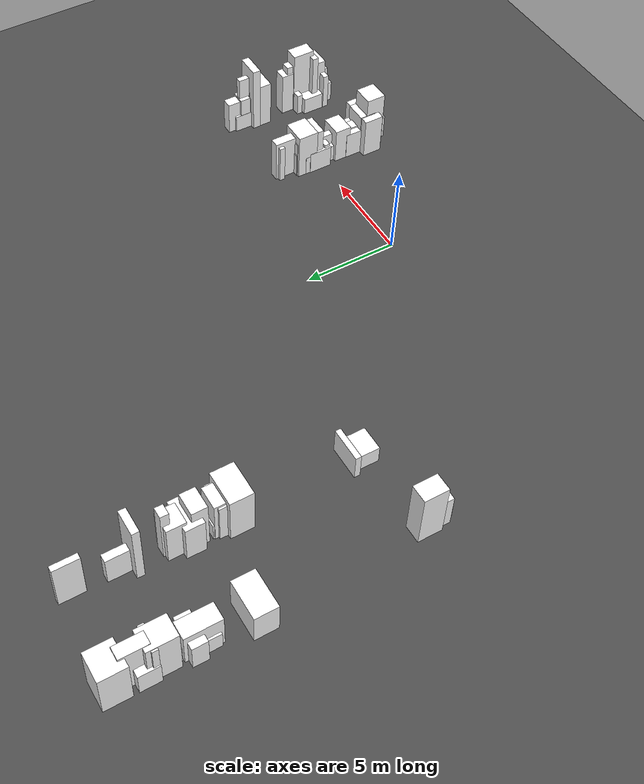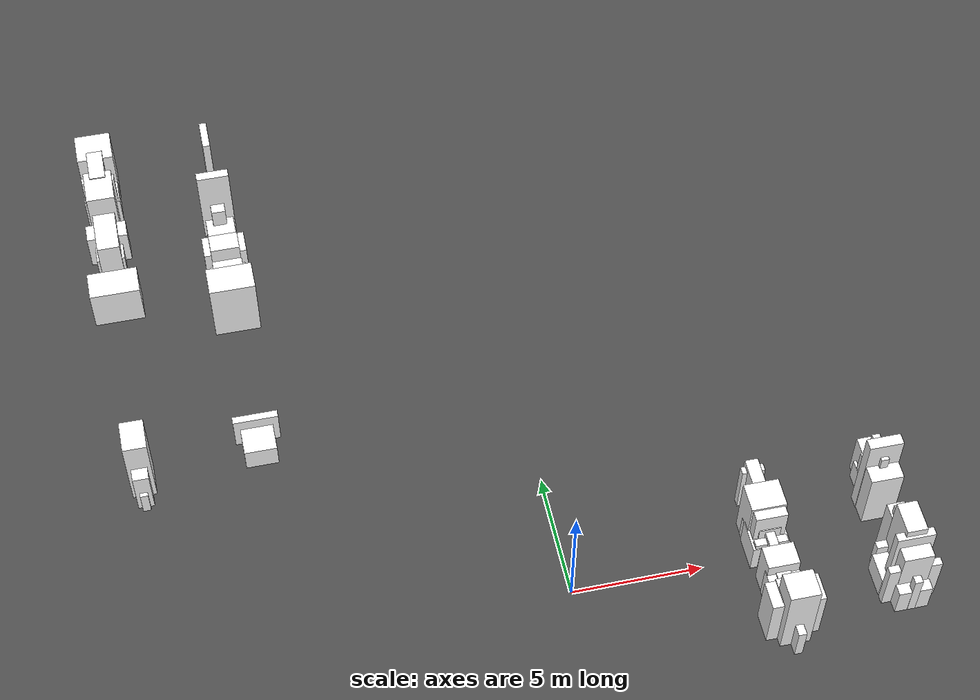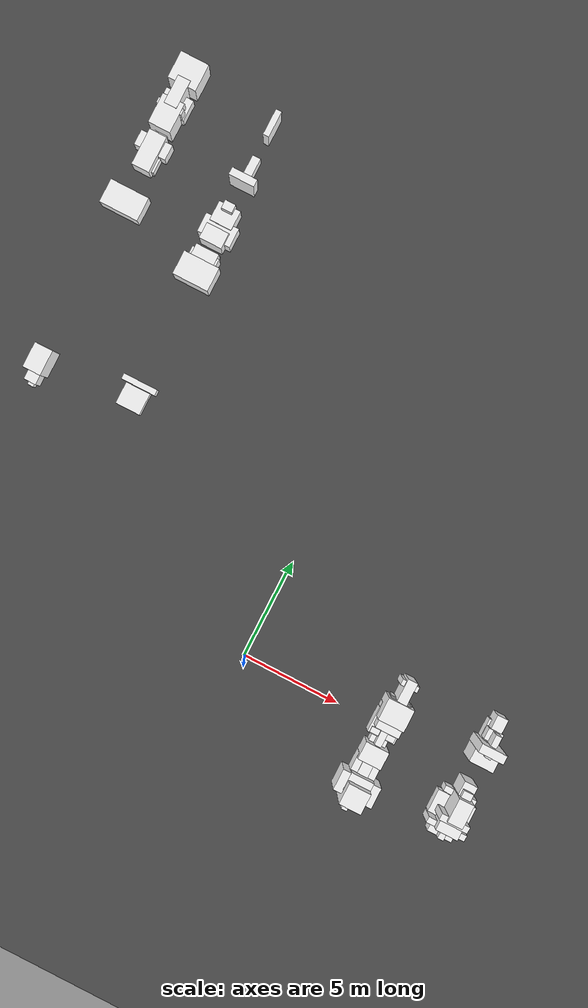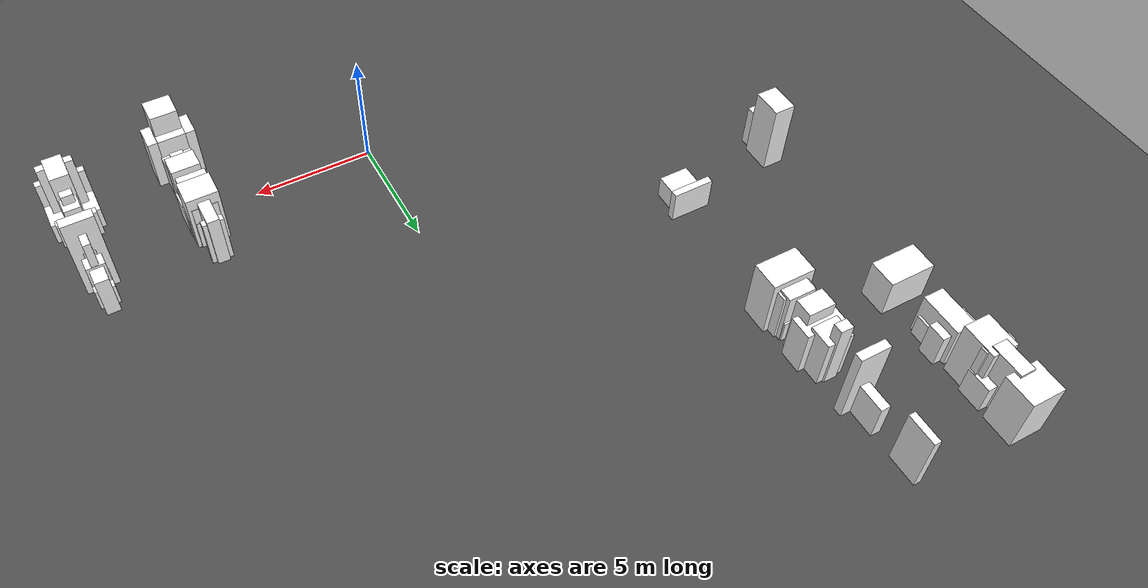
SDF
<sdf version="1.6">
 <world name="mirror_edge_world">
  <model name="ground_plane">
   <static>true</static>
   <link name="link">
    <collision name="collision">
     <geometry><plane><normal>0 0 1</normal><size>100 100</size></plane></geometry>
    </collision>
    <visual name="visual">
     <geometry><plane><normal>0 0 1</normal><size>100 100</size></plane></geometry>
     <material>
      <ambient>0.3 0.3 0.3 1</ambient>
      <diffuse>0.3 0.3 0.3 1</diffuse>
      <specular>0.5 0.5 0.5 1</specular>
      <emissive>0 0 0 1</emissive>
     </material>
    </visual>
   </link>
  </model>
  <model name="roadside_block_5_24_0">
   <static>true</static>
   <link name="link">
    <pose>7.462890913326366 -3.343544250186103 0.7053059971121474 0 0 0</pose>
    <collision name="collision">
     <geometry><box><size>0.3 1.6919641136228656 1.4106119942242947</size></box></geometry>
    </collision>
    <visual name="visual">
     <geometry><box><size>0.3 1.6919641136228656 1.4106119942242947</size></box></geometry>
     <material>
      <ambient>1 1 1 1</ambient>
      <diffuse>1 1 1 1</diffuse>
      <specular>0.9 0.9 0.9 1</specular>
      <emissive>0.05 0.05 0.05 1</emissive>
     </material>
    </visual>
   </link>
  </model>
  <model name="roadside_block_5_25_0">
   <static>true</static>
   <link name="link">
    <pose>7.462890913326366 -3.2311919272771905 1.6919149049817446 0 0 0</pose>
    <collision name="collision">
     <geometry><box><size>1.1378854857000824 1.0619434902325613 3.383829809963489</size></box></geometry>
    </collision>
    <visual name="visual">
     <geometry><box><size>1.1378854857000824 1.0619434902325613 3.383829809963489</size></box></geometry>
     <material>
      <ambient>1 1 1 1</ambient>
      <diffuse>1 1 1 1</diffuse>
      <specular>0.9 0.9 0.9 1</specular>
      <emissive>0.05 0.05 0.05 1</emissive>
     </material>
    </visual>
   </link>
  </model>
  <model name="roadside_block_5_26_0">
   <static>true</static>
   <link name="link">
    <pose>12.062890913326367 -3.118839604368278 0.9534237336242563 0 0 0</pose>
    <collision name="collision">
     <geometry><box><size>0.3 0.30421665590178204 1.9068474672485125</size></box></geometry>
    </collision>
    <visual name="visual">
     <geometry><box><size>0.3 0.30421665590178204 1.9068474672485125</size></box></geometry>
     <material>
      <ambient>1 1 1 1</ambient>
      <diffuse>1 1 1 1</diffuse>
      <specular>0.9 0.9 0.9 1</specular>
      <emissive>0.05 0.05 0.05 1</emissive>
     </material>
    </visual>
   </link>
  </model>
  <model name="roadside_block_5_27_0">
   <static>true</static>
   <link name="link">
    <pose>12.062890913326367 -3.006487281459366 0.6172162483355812 0 0 0</pose>
    <collision name="collision">
     <geometry><box><size>1.2660789604378446 0.5171762105283415 1.2344324966711624</size></box></geometry>
    </collision>
    <visual name="visual">
     <geometry><box><size>1.2660789604378446 0.5171762105283415 1.2344324966711624</size></box></geometry>
     <material>
      <ambient>1 1 1 1</ambient>
      <diffuse>1 1 1 1</diffuse>
      <specular>0.9 0.9 0.9 1</specular>
      <emissive>0.05 0.05 0.05 1</emissive>
     </material>
    </visual>
   </link>
  </model>
  <model name="roadside_block_5_28_0">
   <static>true</static>
   <link name="link">
    <pose>7.462890913326366 -2.8941349585504534 1.184255943134263 0 0 0</pose>
    <collision name="collision">
     <geometry><box><size>2.0 1.0692905444001255 2.368511886268526</size></box></geometry>
    </collision>
    <visual name="visual">
     <geometry><box><size>2.0 1.0692905444001255 2.368511886268526</size></box></geometry>
     <material>
      <ambient>1 1 1 1</ambient>
      <diffuse>1 1 1 1</diffuse>
      <specular>0.9 0.9 0.9 1</specular>
      <emissive>0.05 0.05 0.05 1</emissive>
     </material>
    </visual>
   </link>
  </model>
  <model name="roadside_block_5_29_0">
   <static>true</static>
   <link name="link">
    <pose>7.462890913326366 -2.781782635641541 1.204679029686971 0 0 0</pose>
    <collision name="collision">
     <geometry><box><size>1.1732764641987752 0.9343657603073516 2.409358059373942</size></box></geometry>
    </collision>
    <visual name="visual">
     <geometry><box><size>1.1732764641987752 0.9343657603073516 2.409358059373942</size></box></geometry>
     <material>
      <ambient>1 1 1 1</ambient>
      <diffuse>1 1 1 1</diffuse>
      <specular>0.9 0.9 0.9 1</specular>
      <emissive>0.05 0.05 0.05 1</emissive>
     </material>
    </visual>
   </link>
  </model>
  <model name="roadside_block_5_30_0">
   <static>true</static>
   <link name="link">
    <pose>12.062890913326367 -2.6694303127326284 1.0697446471938798 0 0 0</pose>
    <collision name="collision">
     <geometry><box><size>2.0 0.3 2.1394892943877597</size></box></geometry>
    </collision>
    <visual name="visual">
     <geometry><box><size>2.0 0.3 2.1394892943877597</size></box></geometry>
     <material>
      <ambient>1 1 1 1</ambient>
      <diffuse>1 1 1 1</diffuse>
      <specular>0.9 0.9 0.9 1</specular>
      <emissive>0.05 0.05 0.05 1</emissive>
     </material>
    </visual>
   </link>
  </model>
  <model name="roadside_block_5_31_0">
   <static>true</static>
   <link name="link">
    <pose>12.062890913326367 -2.557077989823716 0.5 0 0 0</pose>
    <collision name="collision">
     <geometry><box><size>1.1150576575359301 0.5936564443470459 1.0</size></box></geometry>
    </collision>
    <visual name="visual">
     <geometry><box><size>1.1150576575359301 0.5936564443470459 1.0</size></box></geometry>
     <material>
      <ambient>1 1 1 1</ambient>
      <diffuse>1 1 1 1</diffuse>
      <specular>0.9 0.9 0.9 1</specular>
      <emissive>0.05 0.05 0.05 1</emissive>
     </material>
    </visual>
   </link>
  </model>
  <model name="roadside_block_5_32_0">
   <static>true</static>
   <link name="link">
    <pose>12.062890913326367 -2.444725666914804 1.440482290019485 0 0 0</pose>
    <collision name="collision">
     <geometry><box><size>1.1359029211315368 0.774168994315854 2.88096458003897</size></box></geometry>
    </collision>
    <visual name="visual">
     <geometry><box><size>1.1359029211315368 0.774168994315854 2.88096458003897</size></box></geometry>
     <material>
      <ambient>1 1 1 1</ambient>
      <diffuse>1 1 1 1</diffuse>
      <specular>0.9 0.9 0.9 1</specular>
      <emissive>0.05 0.05 0.05 1</emissive>
     </material>
    </visual>
   </link>
  </model>
  <model name="roadside_block_5_33_0">
   <static>true</static>
   <link name="link">
    <pose>7.462890913326366 -2.332373344005892 0.5 0 0 0</pose>
    <collision name="collision">
     <geometry><box><size>0.6390449073735784 0.682174721195031 1.0</size></box></geometry>
    </collision>
    <visual name="visual">
     <geometry><box><size>0.6390449073735784 0.682174721195031 1.0</size></box></geometry>
     <material>
      <ambient>1 1 1 1</ambient>
      <diffuse>1 1 1 1</diffuse>
      <specular>0.9 0.9 0.9 1</specular>
      <emissive>0.05 0.05 0.05 1</emissive>
     </material>
    </visual>
   </link>
  </model>
  <model name="roadside_block_5_34_0">
   <static>true</static>
   <link name="link">
    <pose>7.462890913326366 -2.2200210210969793 0.77764496712313 0 0 0</pose>
    <collision name="collision">
     <geometry><box><size>1.2455273802225195 1.555825282324789 1.55528993424626</size></box></geometry>
    </collision>
    <visual name="visual">
     <geometry><box><size>1.2455273802225195 1.555825282324789 1.55528993424626</size></box></geometry>
     <material>
      <ambient>1 1 1 1</ambient>
      <diffuse>1 1 1 1</diffuse>
      <specular>0.9 0.9 0.9 1</specular>
      <emissive>0.05 0.05 0.05 1</emissive>
     </material>
    </visual>
   </link>
  </model>
  <model name="roadside_block_5_35_0">
   <static>true</static>
   <link name="link">
    <pose>12.062890913326367 -2.107668698188067 1.703378008269695 0 0 0</pose>
    <collision name="collision">
     <geometry><box><size>1.4455943533769733 0.32758486168749446 3.40675601653939</size></box></geometry>
    </collision>
    <visual name="visual">
     <geometry><box><size>1.4455943533769733 0.32758486168749446 3.40675601653939</size></box></geometry>
     <material>
      <ambient>1 1 1 1</ambient>
      <diffuse>1 1 1 1</diffuse>
      <specular>0.9 0.9 0.9 1</specular>
      <emissive>0.05 0.05 0.05 1</emissive>
     </material>
    </visual>
   </link>
  </model>
  <model name="roadside_block_5_36_0">
   <static>true</static>
   <link name="link">
    <pose>12.062890913326367 -1.9953163752791543 1.1438421243865613 0 0 0</pose>
    <collision name="collision">
     <geometry><box><size>0.6153820979049732 0.3 2.2876842487731226</size></box></geometry>
    </collision>
    <visual name="visual">
     <geometry><box><size>0.6153820979049732 0.3 2.2876842487731226</size></box></geometry>
     <material>
      <ambient>1 1 1 1</ambient>
      <diffuse>1 1 1 1</diffuse>
      <specular>0.9 0.9 0.9 1</specular>
      <emissive>0.05 0.05 0.05 1</emissive>
     </material>
    </visual>
   </link>
  </model>
  <model name="roadside_block_5_37_0">
   <static>true</static>
   <link name="link">
    <pose>12.062890913326367 -1.8829640523702418 0.5 0 0 0</pose>
    <collision name="collision"><geometry><box><size>2.0 1.159083093798054 1.0</size></box></geometry></collision>
    <visual name="visual">
     <geometry><box><size>2.0 1.159083093798054 1.0</size></box></geometry>
     <material>
      <ambient>1 1 1 1</ambient>
      <diffuse>1 1 1 1</diffuse>
      <specular>0.9 0.9 0.9 1</specular>
      <emissive>0.05 0.05 0.05 1</emissive>
     </material>
    </visual>
   </link>
  </model>
  <model name="roadside_block_5_38_0">
   <static>true</static>
   <link name="link">
    <pose>7.462890913326366 -1.7706117294613293 0.8202814820559484 0 0 0</pose>
    <collision name="collision">
     <geometry><box><size>0.5460512301548739 1.6145702400973154 1.6405629641118968</size></box></geometry>
    </collision>
    <visual name="visual">
     <geometry><box><size>0.5460512301548739 1.6145702400973154 1.6405629641118968</size></box></geometry>
     <material>
      <ambient>1 1 1 1</ambient>
      <diffuse>1 1 1 1</diffuse>
      <specular>0.9 0.9 0.9 1</specular>
      <emissive>0.05 0.05 0.05 1</emissive>
     </material>
    </visual>
   </link>
  </model>
  <model name="roadside_block_5_39_0">
   <static>true</static>
   <link name="link">
    <pose>12.062890913326367 -1.6582594065524177 1.1292684403319804 0 0 0</pose>
    <collision name="collision">
     <geometry><box><size>0.6322289990604839 1.6718902520688572 2.2585368806639607</size></box></geometry>
    </collision>
    <visual name="visual">
     <geometry><box><size>0.6322289990604839 1.6718902520688572 2.2585368806639607</size></box></geometry>
     <material>
      <ambient>1 1 1 1</ambient>
      <diffuse>1 1 1 1</diffuse>
      <specular>0.9 0.9 0.9 1</specular>
      <emissive>0.05 0.05 0.05 1</emissive>
     </material>
    </visual>
   </link>
  </model>
  <model name="roadside_block_5_40_0">
   <static>true</static>
   <link name="link">
    <pose>12.062890913326367 -1.5459070836435052 1.8611128336403555 0 0 0</pose>
    <collision name="collision">
     <geometry><box><size>0.773189518797576 1.2274525740471485 3.722225667280711</size></box></geometry>
    </collision>
    <visual name="visual">
     <geometry><box><size>0.773189518797576 1.2274525740471485 3.722225667280711</size></box></geometry>
     <material>
      <ambient>1 1 1 1</ambient>
      <diffuse>1 1 1 1</diffuse>
      <specular>0.9 0.9 0.9 1</specular>
      <emissive>0.05 0.05 0.05 1</emissive>
     </material>
    </visual>
   </link>
  </model>
  <model name="roadside_block_5_41_0">
   <static>true</static>
   <link name="link">
    <pose>12.062890913326367 -1.4335547607345926 0.8148137031122462 0 0 0</pose>
    <collision name="collision">
     <geometry><box><size>0.3907767888707495 0.6969606506949625 1.6296274062244924</size></box></geometry>
    </collision>
    <visual name="visual">
     <geometry><box><size>0.3907767888707495 0.6969606506949625 1.6296274062244924</size></box></geometry>
     <material>
      <ambient>1 1 1 1</ambient>
      <diffuse>1 1 1 1</diffuse>
      <specular>0.9 0.9 0.9 1</specular>
      <emissive>0.05 0.05 0.05 1</emissive>
     </material>
    </visual>
   </link>
  </model>
  <model name="roadside_block_5_42_0">
   <static>true</static>
   <link name="link">
    <pose>12.062890913326367 -1.3212024378256801 0.853146245841156 0 0 0</pose>
    <collision name="collision">
     <geometry><box><size>0.4022360974627319 1.1980079621319522 1.706292491682312</size></box></geometry>
    </collision>
    <visual name="visual">
     <geometry><box><size>0.4022360974627319 1.1980079621319522 1.706292491682312</size></box></geometry>
     <material>
      <ambient>1 1 1 1</ambient>
      <diffuse>1 1 1 1</diffuse>
      <specular>0.9 0.9 0.9 1</specular>
      <emissive>0.05 0.05 0.05 1</emissive>
     </material>
    </visual>
   </link>
  </model>
  <model name="roadside_block_5_43_0">
   <static>true</static>
   <link name="link">
    <pose>7.462890913326366 -1.2088501149167676 1.0360239480773898 0 0 0</pose>
    <collision name="collision">
     <geometry><box><size>1.2075600978098049 0.9025726234429245 2.0720478961547797</size></box></geometry>
    </collision>
    <visual name="visual">
     <geometry><box><size>1.2075600978098049 0.9025726234429245 2.0720478961547797</size></box></geometry>
     <material>
      <ambient>1 1 1 1</ambient>
      <diffuse>1 1 1 1</diffuse>
      <specular>0.9 0.9 0.9 1</specular>
      <emissive>0.05 0.05 0.05 1</emissive>
     </material>
    </visual>
   </link>
  </model>
  <model name="roadside_block_5_44_0">
   <static>true</static>
   <link name="link">
    <pose>12.062890913326367 -1.096497792007856 0.6360854691895741 0 0 0</pose>
    <collision name="collision">
     <geometry><box><size>1.6400712410166918 0.3 1.2721709383791482</size></box></geometry>
    </collision>
    <visual name="visual">
     <geometry><box><size>1.6400712410166918 0.3 1.2721709383791482</size></box></geometry>
     <material>
      <ambient>1 1 1 1</ambient>
      <diffuse>1 1 1 1</diffuse>
      <specular>0.9 0.9 0.9 1</specular>
      <emissive>0.05 0.05 0.05 1</emissive>
     </material>
    </visual>
   </link>
  </model>
  <model name="roadside_block_5_45_0">
   <static>true</static>
   <link name="link">
    <pose>12.062890913326367 -0.9841454690989435 1.5071931547730069 0 0 0</pose>
    <collision name="collision">
     <geometry><box><size>0.49351183835509715 0.8185658347978377 3.0143863095460137</size></box></geometry>
    </collision>
    <visual name="visual">
     <geometry><box><size>0.49351183835509715 0.8185658347978377 3.0143863095460137</size></box></geometry>
     <material>
      <ambient>1 1 1 1</ambient>
      <diffuse>1 1 1 1</diffuse>
      <specular>0.9 0.9 0.9 1</specular>
      <emissive>0.05 0.05 0.05 1</emissive>
     </material>
    </visual>
   </link>
  </model>
  <model name="roadside_block_5_46_0">
   <static>true</static>
   <link name="link">
    <pose>12.062890913326367 -0.871793146190031 1.2907725653884417 0 0 0</pose>
    <collision name="collision">
     <geometry><box><size>0.6757410785137326 1.2903458992776295 2.5815451307768833</size></box></geometry>
    </collision>
    <visual name="visual">
     <geometry><box><size>0.6757410785137326 1.2903458992776295 2.5815451307768833</size></box></geometry>
     <material>
      <ambient>1 1 1 1</ambient>
      <diffuse>1 1 1 1</diffuse>
      <specular>0.9 0.9 0.9 1</specular>
      <emissive>0.05 0.05 0.05 1</emissive>
     </material>
    </visual>
   </link>
  </model>
  <model name="roadside_block_5_50_0">
   <static>true</static>
   <link name="link">
    <pose>7.462890913326366 -0.422383854554381 0.835568922632957 0 0 0</pose>
    <collision name="collision">
     <geometry><box><size>0.3484342076294977 1.5304906314250315 1.671137845265914</size></box></geometry>
    </collision>
    <visual name="visual">
     <geometry><box><size>0.3484342076294977 1.5304906314250315 1.671137845265914</size></box></geometry>
     <material>
      <ambient>1 1 1 1</ambient>
      <diffuse>1 1 1 1</diffuse>
      <specular>0.9 0.9 0.9 1</specular>
      <emissive>0.05 0.05 0.05 1</emissive>
     </material>
    </visual>
   </link>
  </model>
  <model name="roadside_block_5_52_0">
   <static>true</static>
   <link name="link">
    <pose>7.462890913326366 -0.19767920873655598 0.7355746765639094 0 0 0</pose>
    <collision name="collision">
     <geometry><box><size>1.2472125981173643 0.3 1.4711493531278188</size></box></geometry>
    </collision>
    <visual name="visual">
     <geometry><box><size>1.2472125981173643 0.3 1.4711493531278188</size></box></geometry>
     <material>
      <ambient>1 1 1 1</ambient>
      <diffuse>1 1 1 1</diffuse>
      <specular>0.9 0.9 0.9 1</specular>
      <emissive>0.05 0.05 0.05 1</emissive>
     </material>
    </visual>
   </link>
  </model>
  <model name="roadside_block_5_55_0">
   <static>true</static>
   <link name="link">
    <pose>7.462890913326366 0.13937775999018065 0.5 0 0 0</pose>
    <collision name="collision">
     <geometry><box><size>0.8594713080330447 1.8893442341794189 1.0</size></box></geometry>
    </collision>
    <visual name="visual">
     <geometry><box><size>0.8594713080330447 1.8893442341794189 1.0</size></box></geometry>
     <material>
      <ambient>1 1 1 1</ambient>
      <diffuse>1 1 1 1</diffuse>
      <specular>0.9 0.9 0.9 1</specular>
      <emissive>0.05 0.05 0.05 1</emissive>
     </material>
    </visual>
   </link>
  </model>
  <model name="roadside_block_5_56_0">
   <static>true</static>
   <link name="link">
    <pose>7.462890913326366 0.25173008289909315 0.6450696981149602 0 0 0</pose>
    <collision name="collision">
     <geometry><box><size>1.4215834627351507 1.2772018385130857 1.2901393962299204</size></box></geometry>
    </collision>
    <visual name="visual">
     <geometry><box><size>1.4215834627351507 1.2772018385130857 1.2901393962299204</size></box></geometry>
     <material>
      <ambient>1 1 1 1</ambient>
      <diffuse>1 1 1 1</diffuse>
      <specular>0.9 0.9 0.9 1</specular>
      <emissive>0.05 0.05 0.05 1</emissive>
     </material>
    </visual>
   </link>
  </model>
  <model name="roadside_block_5_58_0">
   <static>true</static>
   <link name="link">
    <pose>7.462890913326366 0.47643472871691817 0.9159784110221777 0 0 0</pose>
    <collision name="collision">
     <geometry><box><size>0.8337872527775093 0.8707754903071847 1.8319568220443554</size></box></geometry>
    </collision>
    <visual name="visual">
     <geometry><box><size>0.8337872527775093 0.8707754903071847 1.8319568220443554</size></box></geometry>
     <material>
      <ambient>1 1 1 1</ambient>
      <diffuse>1 1 1 1</diffuse>
      <specular>0.9 0.9 0.9 1</specular>
      <emissive>0.05 0.05 0.05 1</emissive>
     </material>
    </visual>
   </link>
  </model>
  <model name="roadside_block_5_59_0">
   <static>true</static>
   <link name="link">
    <pose>7.462890913326366 0.5887870516258307 0.5596022108176256 0 0 0</pose>
    <collision name="collision">
     <geometry><box><size>1.3650161076685685 1.135578427917382 1.1192044216352512</size></box></geometry>
    </collision>
    <visual name="visual">
     <geometry><box><size>1.3650161076685685 1.135578427917382 1.1192044216352512</size></box></geometry>
     <material>
      <ambient>1 1 1 1</ambient>
      <diffuse>1 1 1 1</diffuse>
      <specular>0.9 0.9 0.9 1</specular>
      <emissive>0.05 0.05 0.05 1</emissive>
     </material>
    </visual>
   </link>
  </model>
  <model name="roadside_block_5_60_0">
   <static>true</static>
   <link name="link">
    <pose>7.462890913326366 0.7011393745347432 1.2984772294550182 0 0 0</pose>
    <collision name="collision">
     <geometry><box><size>1.2160089581274198 1.2456472791120665 2.5969544589100364</size></box></geometry>
    </collision>
    <visual name="visual">
     <geometry><box><size>1.2160089581274198 1.2456472791120665 2.5969544589100364</size></box></geometry>
     <material>
      <ambient>1 1 1 1</ambient>
      <diffuse>1 1 1 1</diffuse>
      <specular>0.9 0.9 0.9 1</specular>
      <emissive>0.05 0.05 0.05 1</emissive>
     </material>
    </visual>
   </link>
  </model>
  <model name="roadside_block_5_62_0">
   <static>true</static>
   <link name="link">
    <pose>7.462890913326366 0.9258440203525682 1.152142262496788 0 0 0</pose>
    <collision name="collision">
     <geometry><box><size>0.8007224995984773 0.7336211444003709 2.304284524993576</size></box></geometry>
    </collision>
    <visual name="visual">
     <geometry><box><size>0.8007224995984773 0.7336211444003709 2.304284524993576</size></box></geometry>
     <material>
      <ambient>1 1 1 1</ambient>
      <diffuse>1 1 1 1</diffuse>
      <specular>0.9 0.9 0.9 1</specular>
      <emissive>0.05 0.05 0.05 1</emissive>
     </material>
    </visual>
   </link>
  </model>
  <model name="roadside_block_5_63_0">
   <static>true</static>
   <link name="link">
    <pose>7.462890913326366 1.0381963432614798 1.3433447005062997 0 0 0</pose>
    <collision name="collision">
     <geometry><box><size>1.3466211812948599 1.1351001669343799 2.6866894010125995</size></box></geometry>
    </collision>
    <visual name="visual">
     <geometry><box><size>1.3466211812948599 1.1351001669343799 2.6866894010125995</size></box></geometry>
     <material>
      <ambient>1 1 1 1</ambient>
      <diffuse>1 1 1 1</diffuse>
      <specular>0.9 0.9 0.9 1</specular>
      <emissive>0.05 0.05 0.05 1</emissive>
     </material>
    </visual>
   </link>
  </model>
  <model name="roadside_block_5_64_0">
   <static>true</static>
   <link name="link">
    <pose>12.062890913326367 1.1505486661703923 1.36726944813746 0 0 0</pose>
    <collision name="collision">
     <geometry><box><size>1.2503709250553636 0.9007053063773237 2.73453889627492</size></box></geometry>
    </collision>
    <visual name="visual">
     <geometry><box><size>1.2503709250553636 0.9007053063773237 2.73453889627492</size></box></geometry>
     <material>
      <ambient>1 1 1 1</ambient>
      <diffuse>1 1 1 1</diffuse>
      <specular>0.9 0.9 0.9 1</specular>
      <emissive>0.05 0.05 0.05 1</emissive>
     </material>
    </visual>
   </link>
  </model>
  <model name="roadside_block_5_65_0">
   <static>true</static>
   <link name="link">
    <pose>12.062890913326367 1.262900989079304 1.1215627110080615 0 0 0</pose>
    <collision name="collision">
     <geometry><box><size>0.47360862902993617 1.1245708553805616 2.243125422016123</size></box></geometry>
    </collision>
    <visual name="visual">
     <geometry><box><size>0.47360862902993617 1.1245708553805616 2.243125422016123</size></box></geometry>
     <material>
      <ambient>1 1 1 1</ambient>
      <diffuse>1 1 1 1</diffuse>
      <specular>0.9 0.9 0.9 1</specular>
      <emissive>0.05 0.05 0.05 1</emissive>
     </material>
    </visual>
   </link>
  </model>
  <model name="roadside_block_5_66_0">
   <static>true</static>
   <link name="link">
    <pose>7.462890913326366 1.3752533119882164 0.692509603846676 0 0 0</pose>
    <collision name="collision">
     <geometry><box><size>1.0296866679056351 0.5845859553616628 1.385019207693352</size></box></geometry>
    </collision>
    <visual name="visual">
     <geometry><box><size>1.0296866679056351 0.5845859553616628 1.385019207693352</size></box></geometry>
     <material>
      <ambient>1 1 1 1</ambient>
      <diffuse>1 1 1 1</diffuse>
      <specular>0.9 0.9 0.9 1</specular>
      <emissive>0.05 0.05 0.05 1</emissive>
     </material>
    </visual>
   </link>
  </model>
  <model name="roadside_block_5_67_0">
   <static>true</static>
   <link name="link">
    <pose>7.462890913326366 1.487605634897129 1.0781088516621724 0 0 0</pose>
    <collision name="collision">
     <geometry><box><size>1.062181826947717 0.3 2.156217703324345</size></box></geometry>
    </collision>
    <visual name="visual">
     <geometry><box><size>1.062181826947717 0.3 2.156217703324345</size></box></geometry>
     <material>
      <ambient>1 1 1 1</ambient>
      <diffuse>1 1 1 1</diffuse>
      <specular>0.9 0.9 0.9 1</specular>
      <emissive>0.05 0.05 0.05 1</emissive>
     </material>
    </visual>
   </link>
  </model>
  <model name="roadside_block_5_68_0">
   <static>true</static>
   <link name="link">
    <pose>12.062890913326367 1.5999579578060414 1.9746289039608125 0 0 0</pose>
    <collision name="collision">
     <geometry><box><size>1.2988890222607097 0.4388357167275332 3.949257807921625</size></box></geometry>
    </collision>
    <visual name="visual">
     <geometry><box><size>1.2988890222607097 0.4388357167275332 3.949257807921625</size></box></geometry>
     <material>
      <ambient>1 1 1 1</ambient>
      <diffuse>1 1 1 1</diffuse>
      <specular>0.9 0.9 0.9 1</specular>
      <emissive>0.05 0.05 0.05 1</emissive>
     </material>
    </visual>
   </link>
  </model>
  <model name="roadside_block_5_69_0">
   <static>true</static>
   <link name="link">
    <pose>12.062890913326367 1.712310280714954 0.9380428768186815 0 0 0</pose>
    <collision name="collision">
     <geometry><box><size>0.7131034800841556 0.6423250902820807 1.876085753637363</size></box></geometry>
    </collision>
    <visual name="visual">
     <geometry><box><size>0.7131034800841556 0.6423250902820807 1.876085753637363</size></box></geometry>
     <material>
      <ambient>1 1 1 1</ambient>
      <diffuse>1 1 1 1</diffuse>
      <specular>0.9 0.9 0.9 1</specular>
      <emissive>0.05 0.05 0.05 1</emissive>
     </material>
    </visual>
   </link>
  </model>
  <model name="roadside_block_5_70_0">
   <static>true</static>
   <link name="link">
    <pose>12.062890913326367 1.8246626036238665 1.626193253503031 0 0 0</pose>
    <collision name="collision">
     <geometry><box><size>0.3 1.1747105836230307 3.252386507006062</size></box></geometry>
    </collision>
    <visual name="visual">
     <geometry><box><size>0.3 1.1747105836230307 3.252386507006062</size></box></geometry>
     <material>
      <ambient>1 1 1 1</ambient>
      <diffuse>1 1 1 1</diffuse>
      <specular>0.9 0.9 0.9 1</specular>
      <emissive>0.05 0.05 0.05 1</emissive>
     </material>
    </visual>
   </link>
  </model>
  <model name="roadside_block_5_71_0">
   <static>true</static>
   <link name="link">
    <pose>12.062890913326367 1.937014926532779 0.5 0 0 0</pose>
    <collision name="collision">
     <geometry><box><size>0.7977471465222763 1.68344833461963 1.0</size></box></geometry>
    </collision>
    <visual name="visual">
     <geometry><box><size>0.7977471465222763 1.68344833461963 1.0</size></box></geometry>
     <material>
      <ambient>1 1 1 1</ambient>
      <diffuse>1 1 1 1</diffuse>
      <specular>0.9 0.9 0.9 1</specular>
      <emissive>0.05 0.05 0.05 1</emissive>
     </material>
    </visual>
   </link>
  </model>
  <model name="roadside_block_5_72_0">
   <static>true</static>
   <link name="link">
    <pose>7.462890913326366 2.0493672494416915 1.2235544605137745 0 0 0</pose>
    <collision name="collision">
     <geometry><box><size>0.5038174221481639 1.4580806659910566 2.447108921027549</size></box></geometry>
    </collision>
    <visual name="visual">
     <geometry><box><size>0.5038174221481639 1.4580806659910566 2.447108921027549</size></box></geometry>
     <material>
      <ambient>1 1 1 1</ambient>
      <diffuse>1 1 1 1</diffuse>
      <specular>0.9 0.9 0.9 1</specular>
      <emissive>0.05 0.05 0.05 1</emissive>
     </material>
    </visual>
   </link>
  </model>
  <model name="roadside_block_5_73_0">
   <static>true</static>
   <link name="link">
    <pose>12.062890913326367 2.161719572350603 1.0136334589019338 0 0 0</pose>
    <collision name="collision">
     <geometry><box><size>0.7603806511727769 0.573211701848025 2.0272669178038676</size></box></geometry>
    </collision>
    <visual name="visual">
     <geometry><box><size>0.7603806511727769 0.573211701848025 2.0272669178038676</size></box></geometry>
     <material>
      <ambient>1 1 1 1</ambient>
      <diffuse>1 1 1 1</diffuse>
      <specular>0.9 0.9 0.9 1</specular>
      <emissive>0.05 0.05 0.05 1</emissive>
     </material>
    </visual>
   </link>
  </model>
  <model name="roadside_block_5_74_0">
   <static>true</static>
   <link name="link">
    <pose>12.062890913326367 2.2740718952595165 0.846408011227066 0 0 0</pose>
    <collision name="collision">
     <geometry><box><size>0.4772358815172779 1.4299418209656158 1.692816022454132</size></box></geometry>
    </collision>
    <visual name="visual">
     <geometry><box><size>0.4772358815172779 1.4299418209656158 1.692816022454132</size></box></geometry>
     <material>
      <ambient>1 1 1 1</ambient>
      <diffuse>1 1 1 1</diffuse>
      <specular>0.9 0.9 0.9 1</specular>
      <emissive>0.05 0.05 0.05 1</emissive>
     </material>
    </visual>
   </link>
  </model>
  <model name="roadside_block_5_75_0">
   <static>true</static>
   <link name="link">
    <pose>12.062890913326367 2.386424218168428 0.9595434311452711 0 0 0</pose>
    <collision name="collision">
     <geometry><box><size>0.5630710945212275 1.558456535831179 1.9190868622905422</size></box></geometry>
    </collision>
    <visual name="visual">
     <geometry><box><size>0.5630710945212275 1.558456535831179 1.9190868622905422</size></box></geometry>
     <material>
      <ambient>1 1 1 1</ambient>
      <diffuse>1 1 1 1</diffuse>
      <specular>0.9 0.9 0.9 1</specular>
      <emissive>0.05 0.05 0.05 1</emissive>
     </material>
    </visual>
   </link>
  </model>
  <model name="roadside_block_5_76_0">
   <static>true</static>
   <link name="link">
    <pose>7.462890913326366 2.4987765410773415 1.1139429635754947 0 0 0</pose>
    <collision name="collision">
     <geometry><box><size>0.87405212618568 0.3 2.2278859271509894</size></box></geometry>
    </collision>
    <visual name="visual">
     <geometry><box><size>0.87405212618568 0.3 2.2278859271509894</size></box></geometry>
     <material>
      <ambient>1 1 1 1</ambient>
      <diffuse>1 1 1 1</diffuse>
      <specular>0.9 0.9 0.9 1</specular>
      <emissive>0.05 0.05 0.05 1</emissive>
     </material>
    </visual>
   </link>
  </model>
  <model name="roadside_block_6_0_0">
   <static>true</static>
   <link name="link">
    <pose>-14.93615656534098 23.23 1.3094589641782157 0 0 0</pose>
    <collision name="collision">
     <geometry><box><size>1.4593174837455698 1.3774172141897116 2.6189179283564314</size></box></geometry>
    </collision>
    <visual name="visual">
     <geometry><box><size>1.4593174837455698 1.3774172141897116 2.6189179283564314</size></box></geometry>
     <material>
      <ambient>1 1 1 1</ambient>
      <diffuse>1 1 1 1</diffuse>
      <specular>0.9 0.9 0.9 1</specular>
      <emissive>0.05 0.05 0.05 1</emissive>
     </material>
    </visual>
   </link>
  </model>
  <model name="roadside_block_6_1_0">
   <static>true</static>
   <link name="link">
    <pose>-10.336156565340978 22.86122716443008 1.366541429359508 0 0 0</pose>
    <collision name="collision">
     <geometry><box><size>0.3 1.3146664912234236 2.733082858719016</size></box></geometry>
    </collision>
    <visual name="visual">
     <geometry><box><size>0.3 1.3146664912234236 2.733082858719016</size></box></geometry>
     <material>
      <ambient>1 1 1 1</ambient>
      <diffuse>1 1 1 1</diffuse>
      <specular>0.9 0.9 0.9 1</specular>
      <emissive>0.05 0.05 0.05 1</emissive>
     </material>
    </visual>
   </link>
  </model>
  <model name="roadside_block_6_2_0">
   <static>true</static>
   <link name="link">
    <pose>-14.93615656534098 22.49245432886016 1.3080841866536184 0 0 0</pose>
    <collision name="collision">
     <geometry><box><size>0.5821570861403771 1.1382499147222775 2.6161683733072367</size></box></geometry>
    </collision>
    <visual name="visual">
     <geometry><box><size>0.5821570861403771 1.1382499147222775 2.6161683733072367</size></box></geometry>
     <material>
      <ambient>1 1 1 1</ambient>
      <diffuse>1 1 1 1</diffuse>
      <specular>0.9 0.9 0.9 1</specular>
      <emissive>0.05 0.05 0.05 1</emissive>
     </material>
    </visual>
   </link>
  </model>
  <model name="roadside_block_6_3_0">
   <static>true</static>
   <link name="link">
    <pose>-14.93615656534098 22.123681493290242 1.3708127115941597 0 0 0</pose>
    <collision name="collision">
     <geometry><box><size>0.647281707294814 1.441767600051965 2.7416254231883195</size></box></geometry>
    </collision>
    <visual name="visual">
     <geometry><box><size>0.647281707294814 1.441767600051965 2.7416254231883195</size></box></geometry>
     <material>
      <ambient>1 1 1 1</ambient>
      <diffuse>1 1 1 1</diffuse>
      <specular>0.9 0.9 0.9 1</specular>
      <emissive>0.05 0.05 0.05 1</emissive>
     </material>
    </visual>
   </link>
  </model>
  <model name="roadside_block_6_4_0">
   <static>true</static>
   <link name="link">
    <pose>-14.93615656534098 21.75490865772032 0.6674924940009329 0 0 0</pose>
    <collision name="collision">
     <geometry><box><size>1.4304315917967756 1.0590543007212132 1.3349849880018658</size></box></geometry>
    </collision>
    <visual name="visual">
     <geometry><box><size>1.4304315917967756 1.0590543007212132 1.3349849880018658</size></box></geometry>
     <material>
      <ambient>1 1 1 1</ambient>
      <diffuse>1 1 1 1</diffuse>
      <specular>0.9 0.9 0.9 1</specular>
      <emissive>0.05 0.05 0.05 1</emissive>
     </material>
    </visual>
   </link>
  </model>
  <model name="roadside_block_6_5_0">
   <static>true</static>
   <link name="link">
    <pose>-14.93615656534098 21.3861358221504 1.329384820723947 0 0 0</pose>
    <collision name="collision">
     <geometry><box><size>1.316654178739713 0.3 2.658769641447894</size></box></geometry>
    </collision>
    <visual name="visual">
     <geometry><box><size>1.316654178739713 0.3 2.658769641447894</size></box></geometry>
     <material>
      <ambient>1 1 1 1</ambient>
      <diffuse>1 1 1 1</diffuse>
      <specular>0.9 0.9 0.9 1</specular>
      <emissive>0.05 0.05 0.05 1</emissive>
     </material>
    </visual>
   </link>
  </model>
  <model name="roadside_block_6_6_0">
   <static>true</static>
   <link name="link">
    <pose>-14.93615656534098 21.01736298658048 1.3508393089421162 0 0 0</pose>
    <collision name="collision">
     <geometry><box><size>1.1385089497321494 1.5115702609389317 2.7016786178842325</size></box></geometry>
    </collision>
    <visual name="visual">
     <geometry><box><size>1.1385089497321494 1.5115702609389317 2.7016786178842325</size></box></geometry>
     <material>
      <ambient>1 1 1 1</ambient>
      <diffuse>1 1 1 1</diffuse>
      <specular>0.9 0.9 0.9 1</specular>
      <emissive>0.05 0.05 0.05 1</emissive>
     </material>
    </visual>
   </link>
  </model>
  <model name="roadside_block_6_7_0">
   <static>true</static>
   <link name="link">
    <pose>-10.336156565340978 20.64859015101056 0.8322142202889253 0 0 0</pose>
    <collision name="collision">
     <geometry><box><size>0.4156019478818006 1.2314627515863399 1.6644284405778507</size></box></geometry>
    </collision>
    <visual name="visual">
     <geometry><box><size>0.4156019478818006 1.2314627515863399 1.6644284405778507</size></box></geometry>
     <material>
      <ambient>1 1 1 1</ambient>
      <diffuse>1 1 1 1</diffuse>
      <specular>0.9 0.9 0.9 1</specular>
      <emissive>0.05 0.05 0.05 1</emissive>
     </material>
    </visual>
   </link>
  </model>
  <model name="roadside_block_6_8_0">
   <static>true</static>
   <link name="link">
    <pose>-14.93615656534098 20.27981731544064 0.5233951488010662 0 0 0</pose>
    <collision name="collision">
     <geometry><box><size>0.6739271353888308 0.3 1.0467902976021324</size></box></geometry>
    </collision>
    <visual name="visual">
     <geometry><box><size>0.6739271353888308 0.3 1.0467902976021324</size></box></geometry>
     <material>
      <ambient>1 1 1 1</ambient>
      <diffuse>1 1 1 1</diffuse>
      <specular>0.9 0.9 0.9 1</specular>
      <emissive>0.05 0.05 0.05 1</emissive>
     </material>
    </visual>
   </link>
  </model>
  <model name="roadside_block_6_9_0">
   <static>true</static>
   <link name="link">
    <pose>-10.336156565340978 19.91104447987072 1.7609151254690145 0 0 0</pose>
    <collision name="collision">
     <geometry><box><size>1.3035411145328177 0.377061832105975 3.521830250938029</size></box></geometry>
    </collision>
    <visual name="visual">
     <geometry><box><size>1.3035411145328177 0.377061832105975 3.521830250938029</size></box></geometry>
     <material>
      <ambient>1 1 1 1</ambient>
      <diffuse>1 1 1 1</diffuse>
      <specular>0.9 0.9 0.9 1</specular>
      <emissive>0.05 0.05 0.05 1</emissive>
     </material>
    </visual>
   </link>
  </model>
  <model name="roadside_block_6_10_0">
   <static>true</static>
   <link name="link">
    <pose>-14.93615656534098 19.5422716443008 0.7829486655649762 0 0 0</pose>
    <collision name="collision">
     <geometry><box><size>1.6397034179050054 0.776105808121561 1.5658973311299524</size></box></geometry>
    </collision>
    <visual name="visual">
     <geometry><box><size>1.6397034179050054 0.776105808121561 1.5658973311299524</size></box></geometry>
     <material>
      <ambient>1 1 1 1</ambient>
      <diffuse>1 1 1 1</diffuse>
      <specular>0.9 0.9 0.9 1</specular>
      <emissive>0.05 0.05 0.05 1</emissive>
     </material>
    </visual>
   </link>
  </model>
  <model name="roadside_block_6_11_0">
   <static>true</static>
   <link name="link">
    <pose>-14.93615656534098 19.17349880873088 0.9829559857800765 0 0 0</pose>
    <collision name="collision">
     <geometry><box><size>0.9046512893329599 1.852763815098609 1.965911971560153</size></box></geometry>
    </collision>
    <visual name="visual">
     <geometry><box><size>0.9046512893329599 1.852763815098609 1.965911971560153</size></box></geometry>
     <material>
      <ambient>1 1 1 1</ambient>
      <diffuse>1 1 1 1</diffuse>
      <specular>0.9 0.9 0.9 1</specular>
      <emissive>0.05 0.05 0.05 1</emissive>
     </material>
    </visual>
   </link>
  </model>
  <model name="roadside_block_6_12_0">
   <static>true</static>
   <link name="link">
    <pose>-14.93615656534098 18.80472597316096 0.5195986527432006 0 0 0</pose>
    <collision name="collision">
     <geometry><box><size>1.1239617886497502 0.8028180137298151 1.0391973054864012</size></box></geometry>
    </collision>
    <visual name="visual">
     <geometry><box><size>1.1239617886497502 0.8028180137298151 1.0391973054864012</size></box></geometry>
     <material>
      <ambient>1 1 1 1</ambient>
      <diffuse>1 1 1 1</diffuse>
      <specular>0.9 0.9 0.9 1</specular>
      <emissive>0.05 0.05 0.05 1</emissive>
     </material>
    </visual>
   </link>
  </model>
  <model name="roadside_block_6_13_0">
   <static>true</static>
   <link name="link">
    <pose>-10.336156565340978 18.435953137591042 1.5664531768443832 0 0 0</pose>
    <collision name="collision">
     <geometry><box><size>0.5509699924162301 0.42944553814365916 3.1329063536887665</size></box></geometry>
    </collision>
    <visual name="visual">
     <geometry><box><size>0.5509699924162301 0.42944553814365916 3.1329063536887665</size></box></geometry>
     <material>
      <ambient>1 1 1 1</ambient>
      <diffuse>1 1 1 1</diffuse>
      <specular>0.9 0.9 0.9 1</specular>
      <emissive>0.05 0.05 0.05 1</emissive>
     </material>
    </visual>
   </link>
  </model>
  <model name="roadside_block_6_14_0">
   <static>true</static>
   <link name="link">
    <pose>-10.336156565340978 18.06718030202112 1.1689727664879621 0 0 0</pose>
    <collision name="collision">
     <geometry><box><size>1.1257247194766182 0.9937322828191428 2.3379455329759242</size></box></geometry>
    </collision>
    <visual name="visual">
     <geometry><box><size>1.1257247194766182 0.9937322828191428 2.3379455329759242</size></box></geometry>
     <material>
      <ambient>1 1 1 1</ambient>
      <diffuse>1 1 1 1</diffuse>
      <specular>0.9 0.9 0.9 1</specular>
      <emissive>0.05 0.05 0.05 1</emissive>
     </material>
    </visual>
   </link>
  </model>
  <model name="roadside_block_6_15_0">
   <static>true</static>
   <link name="link">
    <pose>-10.336156565340978 17.6984074664512 1.0685045717721582 0 0 0</pose>
    <collision name="collision">
     <geometry><box><size>0.3 1.0248166477428635 2.1370091435443164</size></box></geometry>
    </collision>
    <visual name="visual">
     <geometry><box><size>0.3 1.0248166477428635 2.1370091435443164</size></box></geometry>
     <material>
      <ambient>1 1 1 1</ambient>
      <diffuse>1 1 1 1</diffuse>
      <specular>0.9 0.9 0.9 1</specular>
      <emissive>0.05 0.05 0.05 1</emissive>
     </material>
    </visual>
   </link>
  </model>
  <model name="roadside_block_6_16_0">
   <static>true</static>
   <link name="link">
    <pose>-10.336156565340978 17.32963463088128 1.0861032065652498 0 0 0</pose>
    <collision name="collision">
     <geometry><box><size>1.7064243053002377 0.9757161395738105 2.1722064131304997</size></box></geometry>
    </collision>
    <visual name="visual">
     <geometry><box><size>1.7064243053002377 0.9757161395738105 2.1722064131304997</size></box></geometry>
     <material>
      <ambient>1 1 1 1</ambient>
      <diffuse>1 1 1 1</diffuse>
      <specular>0.9 0.9 0.9 1</specular>
      <emissive>0.05 0.05 0.05 1</emissive>
     </material>
    </visual>
   </link>
  </model>
  <model name="roadside_block_6_17_0">
   <static>true</static>
   <link name="link">
    <pose>-10.336156565340978 16.96086179531136 1.38739791445685 0 0 0</pose>
    <collision name="collision">
     <geometry><box><size>1.15285563875366 0.7993230983012181 2.7747958289137</size></box></geometry>
    </collision>
    <visual name="visual">
     <geometry><box><size>1.15285563875366 0.7993230983012181 2.7747958289137</size></box></geometry>
     <material>
      <ambient>1 1 1 1</ambient>
      <diffuse>1 1 1 1</diffuse>
      <specular>0.9 0.9 0.9 1</specular>
      <emissive>0.05 0.05 0.05 1</emissive>
     </material>
    </visual>
   </link>
  </model>
  <model name="roadside_block_6_18_0">
   <static>true</static>
   <link name="link">
    <pose>-14.93615656534098 16.59208895974144 0.9069793852000833 0 0 0</pose>
    <collision name="collision">
     <geometry><box><size>2.0 1.2085402358505268 1.8139587704001665</size></box></geometry>
    </collision>
    <visual name="visual">
     <geometry><box><size>2.0 1.2085402358505268 1.8139587704001665</size></box></geometry>
     <material>
      <ambient>1 1 1 1</ambient>
      <diffuse>1 1 1 1</diffuse>
      <specular>0.9 0.9 0.9 1</specular>
      <emissive>0.05 0.05 0.05 1</emissive>
     </material>
    </visual>
   </link>
  </model>
  <model name="roadside_block_6_19_0">
   <static>true</static>
   <link name="link">
    <pose>-10.336156565340978 16.22331612417152 0.5 0 0 0</pose>
    <collision name="collision">
     <geometry><box><size>1.1182925628848377 0.3 1.0</size></box></geometry>
    </collision>
    <visual name="visual">
     <geometry><box><size>1.1182925628848377 0.3 1.0</size></box></geometry>
     <material>
      <ambient>1 1 1 1</ambient>
      <diffuse>1 1 1 1</diffuse>
      <specular>0.9 0.9 0.9 1</specular>
      <emissive>0.05 0.05 0.05 1</emissive>
     </material>
    </visual>
   </link>
  </model>
  <model name="roadside_block_6_20_0">
   <static>true</static>
   <link name="link">
    <pose>-10.336156565340978 15.854543288601601 1.216955772953597 0 0 0</pose>
    <collision name="collision">
     <geometry><box><size>1.1827041137791097 0.8874876896781152 2.433911545907194</size></box></geometry>
    </collision>
    <visual name="visual">
     <geometry><box><size>1.1827041137791097 0.8874876896781152 2.433911545907194</size></box></geometry>
     <material>
      <ambient>1 1 1 1</ambient>
      <diffuse>1 1 1 1</diffuse>
      <specular>0.9 0.9 0.9 1</specular>
      <emissive>0.05 0.05 0.05 1</emissive>
     </material>
    </visual>
   </link>
  </model>
  <model name="roadside_block_6_21_0">
   <static>true</static>
   <link name="link">
    <pose>-10.336156565340978 15.48577045303168 1.1615051121419975 0 0 0</pose>
    <collision name="collision">
     <geometry><box><size>1.3953010710374123 1.2676670526752865 2.323010224283995</size></box></geometry>
    </collision>
    <visual name="visual">
     <geometry><box><size>1.3953010710374123 1.2676670526752865 2.323010224283995</size></box></geometry>
     <material>
      <ambient>1 1 1 1</ambient>
      <diffuse>1 1 1 1</diffuse>
      <specular>0.9 0.9 0.9 1</specular>
      <emissive>0.05 0.05 0.05 1</emissive>
     </material>
    </visual>
   </link>
  </model>
  <model name="roadside_block_6_22_0">
   <static>true</static>
   <link name="link">
    <pose>-10.336156565340978 15.116997617461761 1.3642865694715374 0 0 0</pose>
    <collision name="collision">
     <geometry><box><size>1.8286851259142467 1.2091525589657384 2.7285731389430747</size></box></geometry>
    </collision>
    <visual name="visual">
     <geometry><box><size>1.8286851259142467 1.2091525589657384 2.7285731389430747</size></box></geometry>
     <material>
      <ambient>1 1 1 1</ambient>
      <diffuse>1 1 1 1</diffuse>
      <specular>0.9 0.9 0.9 1</specular>
      <emissive>0.05 0.05 0.05 1</emissive>
     </material>
    </visual>
   </link>
  </model>
  <model name="roadside_block_6_38_0">
   <static>true</static>
   <link name="link">
    <pose>-10.336156565340978 9.216632248343041 0.7214788548149409 0 0 0</pose>
    <collision name="collision">
     <geometry><box><size>1.754339522683474 0.3 1.4429577096298818</size></box></geometry>
    </collision>
    <visual name="visual">
     <geometry><box><size>1.754339522683474 0.3 1.4429577096298818</size></box></geometry>
     <material>
      <ambient>1 1 1 1</ambient>
      <diffuse>1 1 1 1</diffuse>
      <specular>0.9 0.9 0.9 1</specular>
      <emissive>0.05 0.05 0.05 1</emissive>
     </material>
    </visual>
   </link>
  </model>
  <model name="roadside_block_6_40_0">
   <static>true</static>
   <link name="link">
    <pose>-10.336156565340978 8.479086577203201 0.5 0 0 0</pose>
    <collision name="collision">
     <geometry><box><size>1.2651093003651919 1.1181703406261843 1.0</size></box></geometry>
    </collision>
    <visual name="visual">
     <geometry><box><size>1.2651093003651919 1.1181703406261843 1.0</size></box></geometry>
     <material>
      <ambient>1 1 1 1</ambient>
      <diffuse>1 1 1 1</diffuse>
      <specular>0.9 0.9 0.9 1</specular>
      <emissive>0.05 0.05 0.05 1</emissive>
     </material>
    </visual>
   </link>
  </model>
  <model name="roadside_block_6_41_0">
   <static>true</static>
   <link name="link">
    <pose>-14.93615656534098 8.110313741633282 1.607820975757725 0 0 0</pose>
    <collision name="collision">
     <geometry><box><size>0.9161683752864302 1.2797189085501657 3.21564195151545</size></box></geometry>
    </collision>
    <visual name="visual">
     <geometry><box><size>0.9161683752864302 1.2797189085501657 3.21564195151545</size></box></geometry>
     <material>
      <ambient>1 1 1 1</ambient>
      <diffuse>1 1 1 1</diffuse>
      <specular>0.9 0.9 0.9 1</specular>
      <emissive>0.05 0.05 0.05 1</emissive>
     </material>
    </visual>
   </link>
  </model>
  <model name="roadside_block_6_42_0">
   <static>true</static>
   <link name="link">
    <pose>-14.93615656534098 7.741540906063362 0.9540934595816944 0 0 0</pose>
    <collision name="collision">
     <geometry><box><size>0.6155135001388106 1.5637456804495122 1.908186919163389</size></box></geometry>
    </collision>
    <visual name="visual">
     <geometry><box><size>0.6155135001388106 1.5637456804495122 1.908186919163389</size></box></geometry>
     <material>
      <ambient>1 1 1 1</ambient>
      <diffuse>1 1 1 1</diffuse>
      <specular>0.9 0.9 0.9 1</specular>
      <emissive>0.05 0.05 0.05 1</emissive>
     </material>
    </visual>
   </link>
  </model>
  <model name="roadside_block_6_43_0">
   <static>true</static>
   <link name="link">
    <pose>-14.93615656534098 7.372768070493441 0.5 0 0 0</pose>
    <collision name="collision">
     <geometry><box><size>0.3 1.1672120694609442 1.0</size></box></geometry>
    </collision>
    <visual name="visual">
     <geometry><box><size>0.3 1.1672120694609442 1.0</size></box></geometry>
     <material>
      <ambient>1 1 1 1</ambient>
      <diffuse>1 1 1 1</diffuse>
      <specular>0.9 0.9 0.9 1</specular>
      <emissive>0.05 0.05 0.05 1</emissive>
     </material>
    </visual>
   </link>
  </model>
 </world>
</sdf>
